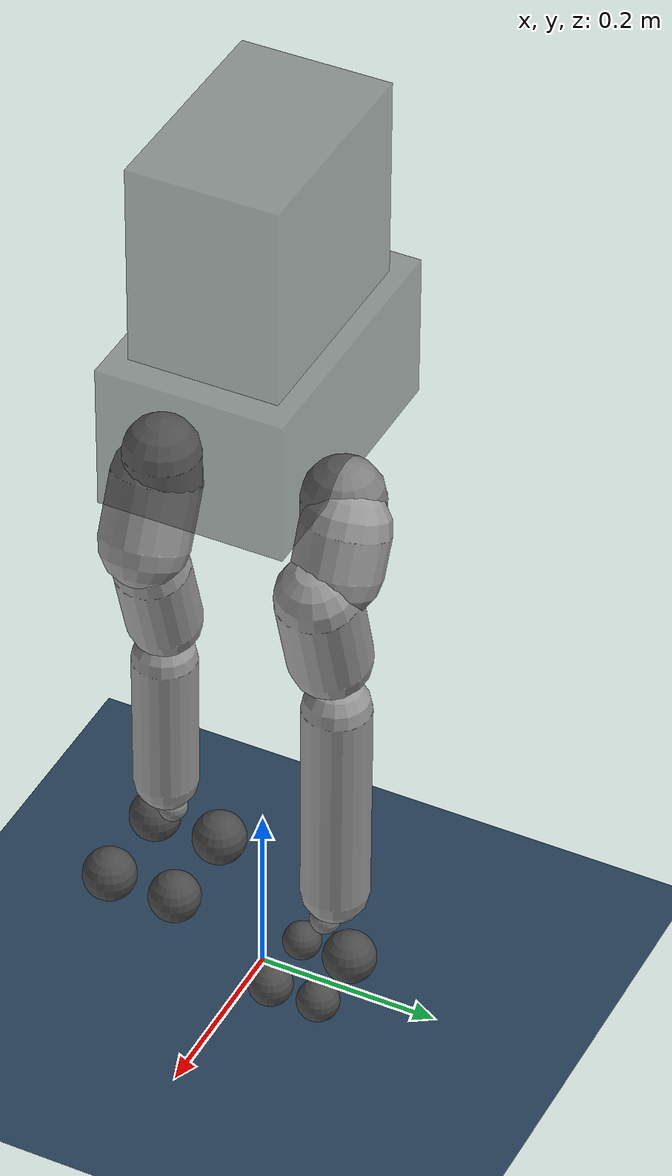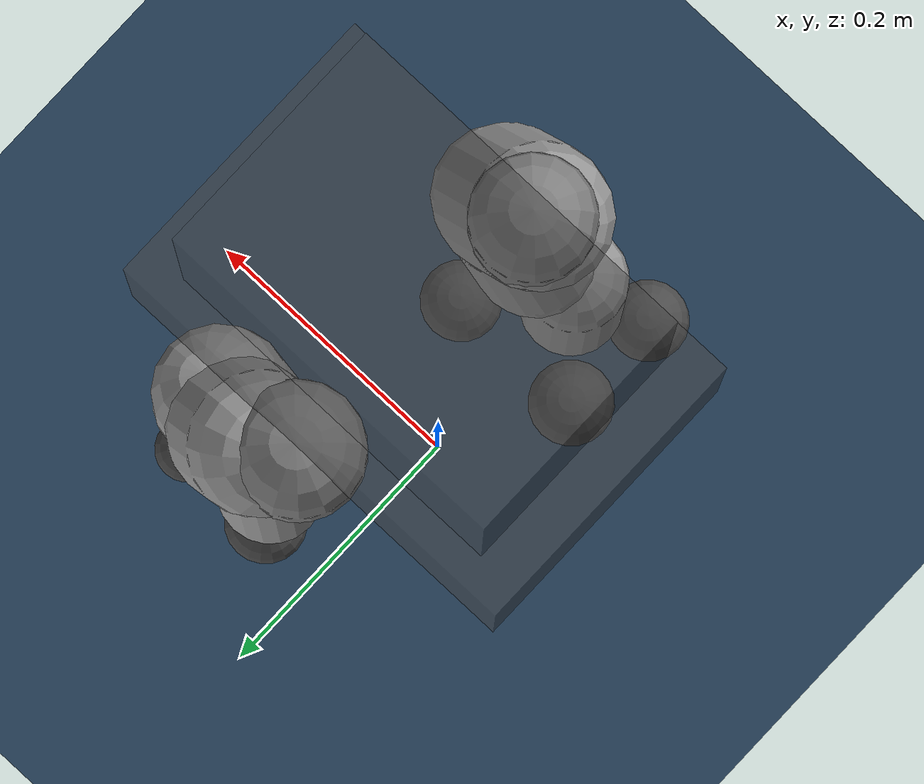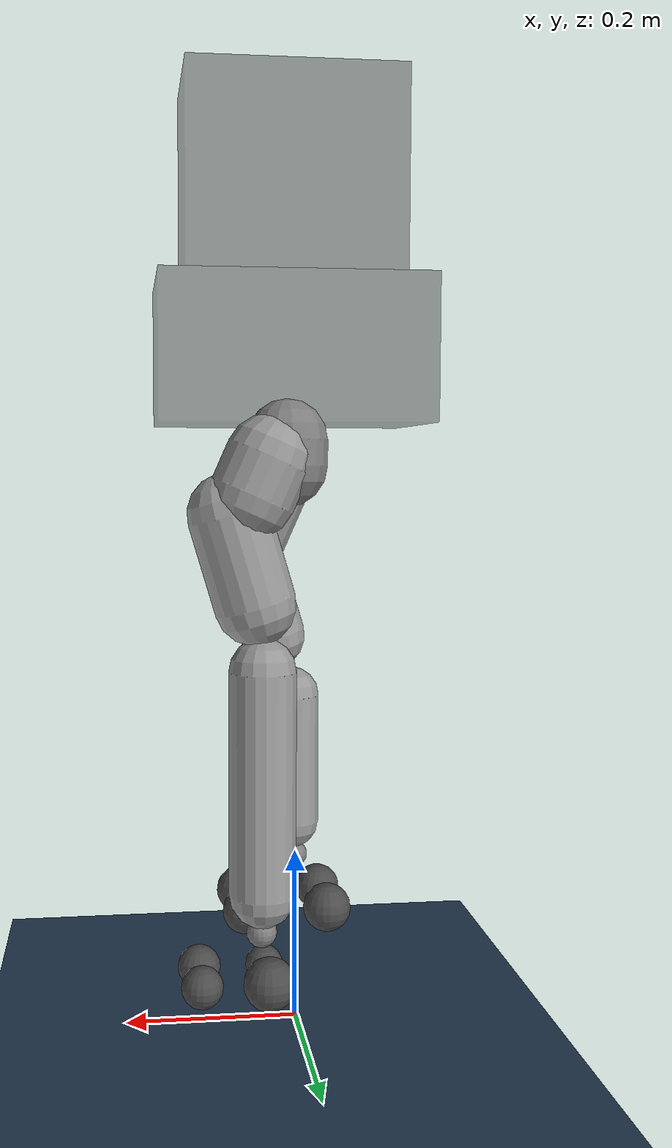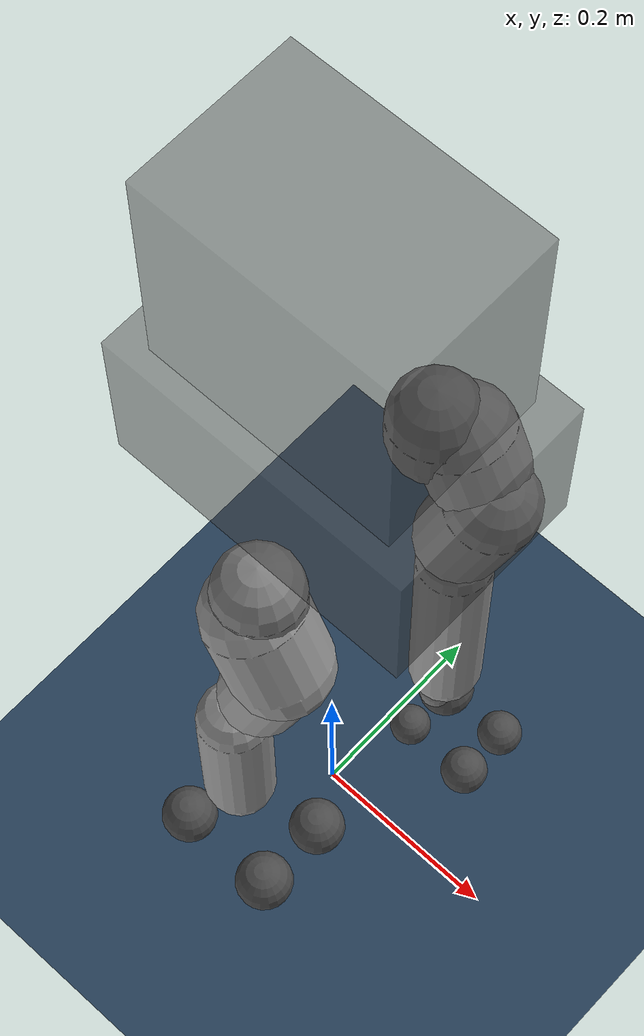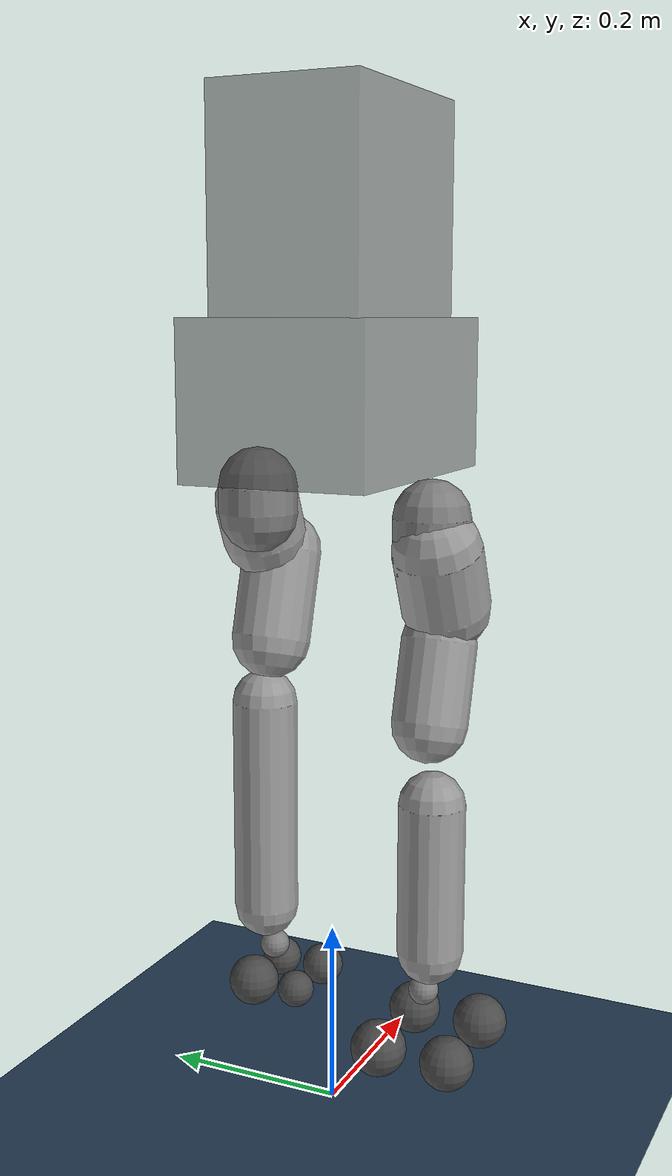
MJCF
<?xml version='1.0' encoding='UTF-8'?>
<mujoco model="g1_12dof">
  <compiler angle="degree" />
  <option timestep="0.002" integrator="RK4" />
  <default>
    <joint damping="4.04" armature="0.01" frictionloss="0.145" limited="true" />
    <geom conaffinity="1" condim="3" contype="1" friction="1.41 0.13 0.23" />
    <motor ctrllimited="true" ctrlrange="-1 1" />
  </default>
  <asset>
    <texture type="skybox" builtin="gradient" rgb1="0.3 0.5 0.7" rgb2="0.0 0.0 0.0" width="512" height="512" />
    <texture name="texplane" type="2d" builtin="checker" rgb1="0.2 0.3 0.4" rgb2="0.1 0.2 0.3" width="512" height="512" mark="cross" markrgb="1 1 1" />
    <material name="matplane" reflectance="0.3" texture="texplane" texrepeat="1 1" texuniform="true" />
  </asset>
  <worldbody>
    <light cutoff="100" diffuse="1 1 1" dir="-1 0 -1.5" directional="true" exponent="1" pos="0 0 1.3" specular="0.1 0.1 0.1" />
    <geom name="floor" pos="0 0 0" size="40 40 0.125" type="plane" material="matplane" condim="3" />
    <body name="pelvis" pos="0.010086 0.002471 0.778743">
      <inertial pos="0.0144905 0.000151462 0.144068" quat="0.999881 -0.000505543 -0.0154276 0.000328408" mass="43.792003" diaginertia="1.84471364 1.51553256 0.70675592" />
      <freejoint name="root" />
      <geom name="pelvis_geom" type="box" size="0.15 0.1 0.08" pos="0 0 0" rgba="0.3 0.3 0.3 0.5" />
      <geom name="torso_geom" type="box" size="0.12 0.08 0.15" pos="0 0 0.15" rgba="0.3 0.3 0.3 0.5" />
      <body name="left_hip_pitch_link" pos="0.014427 0.077711 -0.091897">
        <inertial pos="0.002741 0.047791 -0.02606" quat="0.954862 0.293964 0.0302556 0.030122" mass="2.327819" diaginertia="0.00375322 0.00317230 0.00240291" />
        <joint name="left_hip_pitch_joint" pos="0 0 0" axis="0 1 0" range="-141.0 169.2" damping="1.06" armature="0.01" frictionloss="0.355" />
        <geom name="left_hip_pitch_geom" type="capsule" fromto="0.000000 0.021047 -0.007016 0.000000 0.021047 -0.035078" size="0.043317" rgba="0.5 0.5 0.5 1" />
        <body name="left_hip_roll_link" pos="0.020692 0.033460 -0.026151" quat="0.996179 0 -0.0873386 0">
          <inertial pos="0.029812 -0.001045 -0.087934" quat="0.977808 -1.97119e-05 0.205576 -0.0403793" mass="0.944833" diaginertia="0.00135269 0.00127939 0.00078914" />
          <joint name="left_hip_roll_joint" pos="0 0 0" axis="1 0 0" range="-27.8 165.2" damping="1.77" armature="0.01" frictionloss="0.478" />
          <geom name="left_hip_roll_geom" type="capsule" fromto="0.000000 0.000000 0.000000 0.010668 0.000000 -0.042672" size="0.046548" rgba="0.6 0.6 0.6 1" />
          <body name="left_hip_yaw_link" pos="0.031499 -0.008982 -0.065666">
            <inertial pos="-0.057709 -0.010981 -0.15078" quat="0.600598 0.15832 0.223482 0.751181" mass="3.450192" diaginertia="0.01991283 0.01840965 0.00410843" />
            <joint name="left_hip_yaw_joint" pos="0 0 0" axis="0 0 1" range="-153.5 160.4" damping="3.71" armature="0.01" frictionloss="0.299" />
            <geom name="left_hip_yaw_geom" type="capsule" fromto="0.000000 0.000000 0.000000 -0.045258 0.000000 -0.090516" size="0.044167" rgba="0.6 0.6 0.6 1" />
            <body name="left_knee_link" pos="-0.064722 0.004496 -0.159432" quat="0.996179 0 0.0873386 0">
              <inertial pos="0.005457 0.003964 -0.12074" quat="0.923418 -0.0327699 0.0158246 0.382067" mass="1.053903" diaginertia="0.00507242 0.00502669 0.00065279" />
              <joint name="left_knee_joint" pos="0 0 0" axis="0 1 0" range="-1.4 164.5" damping="1.23" armature="0.01" frictionloss="0.476" />
              <geom name="left_knee_geom" type="capsule" fromto="0.000000 0.000000 0.000000 0.000000 0.000000 -0.243440" size="0.036588" rgba="0.6 0.6 0.6 1" />
              <body name="left_ankle_pitch_link" pos="-0.000391 -0.010889 -0.290219">
                <inertial pos="-0.007269 0 0.011137" quat="0.603053 0.369225 0.369225 0.603053" mass="0.088579" diaginertia="0.00002402 0.00001790 0.00000879" />
                <joint name="left_ankle_pitch_joint" pos="0 0 0" axis="0 1 0" range="-49.4 30.9" damping="4.17" armature="0.005" frictionloss="0.499" />
                <geom name="left_ankle_pitch_geom" type="sphere" size="0.016777" pos="0.000000 0.000000 0.000000" rgba="0.5 0.5 0.5 1" />
                <body name="left_ankle_roll_link" pos="0.021355 -0.002300 -0.021240">
                  <inertial pos="0.026505 0 -0.016425" quat="-0.000481092 0.728482 -0.000618967 0.685065" mass="0.883989" diaginertia="0.00275427 0.00266190 0.00035845" />
                  <joint name="left_ankle_roll_joint" pos="0 0 0" axis="1 0 0" range="-15.6 15.8" damping="2.29" armature="0.005" frictionloss="0.450" />
                  <geom name="left_foot_1" type="sphere" size="0.022816" pos="0.045618 0.027371 -0.027371" rgba="0.3 0.3 0.3 1" />
                  <geom name="left_foot_2" type="sphere" size="0.023903" pos="0.045618 -0.027371 -0.027371" rgba="0.3 0.3 0.3 1" />
                  <geom name="left_foot_3" type="sphere" size="0.028711" pos="-0.027371 0.027371 -0.027371" rgba="0.3 0.3 0.3 1" />
                  <geom name="left_foot_4" type="sphere" size="0.020812" pos="-0.027371 -0.027371 -0.027371" rgba="0.3 0.3 0.3 1" />
                </body>
              </body>
            </body>
          </body>
        </body>
      </body>
      <body name="right_hip_pitch_link" pos="0.007349 -0.073729 -0.109836">
        <inertial pos="0.002741 -0.047791 -0.02606" quat="0.954862 -0.293964 0.0302556 -0.030122" mass="2.425736" diaginertia="0.00396519 0.00335146 0.00253862" />
        <joint name="right_hip_pitch_joint" pos="0 0 0" axis="0 1 0" range="-149.8 168.4" damping="3.40" armature="0.01" frictionloss="0.165" />
        <geom name="right_hip_pitch_geom" type="capsule" fromto="0.000000 -0.031738 -0.010579 0.000000 -0.031738 -0.052897" size="0.040761" rgba="0.5 0.5 0.5 1" />
        <body name="right_hip_roll_link" pos="-0.000177 -0.037994 -0.044112" quat="0.996179 0 -0.0873386 0">
          <inertial pos="0.029812 0.001045 -0.087934" quat="0.977808 1.97119e-05 0.205576 0.0403793" mass="3.033831" diaginertia="0.00640787 0.00606064 0.00373825" />
          <joint name="right_hip_roll_joint" pos="0 0 0" axis="1 0 0" range="-173.2 33.3" damping="1.80" armature="0.01" frictionloss="0.200" />
          <geom name="right_hip_roll_geom" type="capsule" fromto="0.000000 0.000000 0.000000 0.016644 0.000000 -0.066576" size="0.047572" rgba="0.6 0.6 0.6 1" />
          <body name="right_hip_yaw_link" pos="0.003963 0.004382 -0.101412">
            <inertial pos="-0.057709 0.010981 -0.15078" quat="0.751181 0.223482 0.15832 0.600598" mass="3.715400" diaginertia="0.02197940 0.02032023 0.00453480" />
            <joint name="right_hip_yaw_joint" pos="0 0 0" axis="0 0 1" range="-156.0 159.1" damping="1.17" armature="0.01" frictionloss="0.485" />
            <geom name="right_hip_yaw_geom" type="capsule" fromto="0.000000 0.000000 0.000000 -0.039314 0.000000 -0.078628" size="0.040132" rgba="0.6 0.6 0.6 1" />
            <body name="right_knee_link" pos="-0.077182 -0.013810 -0.150453" quat="0.996179 0 0.0873386 0">
              <inertial pos="0.005457 -0.003964 -0.12074" quat="0.923439 0.0345276 0.0116333 -0.382012" mass="4.700294" diaginertia="0.03721663 0.03692312 0.00479203" />
              <joint name="right_knee_joint" pos="0 0 0" axis="0 1 0" range="-7.4 166.5" damping="2.63" armature="0.01" frictionloss="0.360" />
              <geom name="right_knee_geom" type="capsule" fromto="0.000000 0.000000 0.000000 0.000000 0.000000 -0.161988" size="0.035143" rgba="0.6 0.6 0.6 1" />
              <body name="right_ankle_pitch_link" pos="-0.004277 0.004868 -0.205245">
                <inertial pos="-0.007269 0 0.011137" quat="0.603053 0.369225 0.369225 0.603053" mass="0.048552" diaginertia="0.00001078 0.00000803 0.00000394" />
                <joint name="right_ankle_pitch_joint" pos="0 0 0" axis="0 1 0" range="-51.4 34.5" damping="3.23" armature="0.005" frictionloss="0.421" />
                <geom name="right_ankle_pitch_geom" type="sphere" size="0.016030" pos="0.000000 0.000000 0.000000" rgba="0.5 0.5 0.5 1" />
                <body name="right_ankle_roll_link" pos="0.002125 -0.002470 -0.019792">
                  <inertial pos="0.026505 0 -0.016425" quat="0.000481092 0.728482 0.000618967 0.685065" mass="0.745092" diaginertia="0.00219293 0.00211939 0.00028539" />
                  <joint name="right_ankle_roll_joint" pos="0 0 0" axis="1 0 0" range="-14.5 18.9" damping="0.60" armature="0.005" frictionloss="0.436" />
                  <geom name="right_foot_1" type="sphere" size="0.028335" pos="0.064131 0.038479 -0.038479" rgba="0.3 0.3 0.3 1" />
                  <geom name="right_foot_2" type="sphere" size="0.029379" pos="0.064131 -0.038479 -0.038479" rgba="0.3 0.3 0.3 1" />
                  <geom name="right_foot_3" type="sphere" size="0.029726" pos="-0.038479 0.038479 -0.038479" rgba="0.3 0.3 0.3 1" />
                  <geom name="right_foot_4" type="sphere" size="0.028328" pos="-0.038479 -0.038479 -0.038479" rgba="0.3 0.3 0.3 1" />
                </body>
              </body>
            </body>
          </body>
        </body>
      </body>
    </body>
  </worldbody>
  <actuator>
    <motor name="left_hip_pitch_joint" joint="left_hip_pitch_joint" gear="42.0" />
    <motor name="left_hip_roll_joint" joint="left_hip_roll_joint" gear="193.2" />
    <motor name="left_hip_yaw_joint" joint="left_hip_yaw_joint" gear="115.5" />
    <motor name="left_knee_joint" joint="left_knee_joint" gear="232.2" />
    <motor name="left_ankle_pitch_joint" joint="left_ankle_pitch_joint" gear="147.0" />
    <motor name="left_ankle_roll_joint" joint="left_ankle_roll_joint" gear="125.6" />
    <motor name="right_hip_pitch_joint" joint="right_hip_pitch_joint" gear="71.0" />
    <motor name="right_hip_roll_joint" joint="right_hip_roll_joint" gear="303.7" />
    <motor name="right_hip_yaw_joint" joint="right_hip_yaw_joint" gear="188.6" />
    <motor name="right_knee_joint" joint="right_knee_joint" gear="416.7" />
    <motor name="right_ankle_pitch_joint" joint="right_ankle_pitch_joint" gear="80.2" />
    <motor name="right_ankle_roll_joint" joint="right_ankle_roll_joint" gear="113.6" />
  </actuator>
</mujoco>
